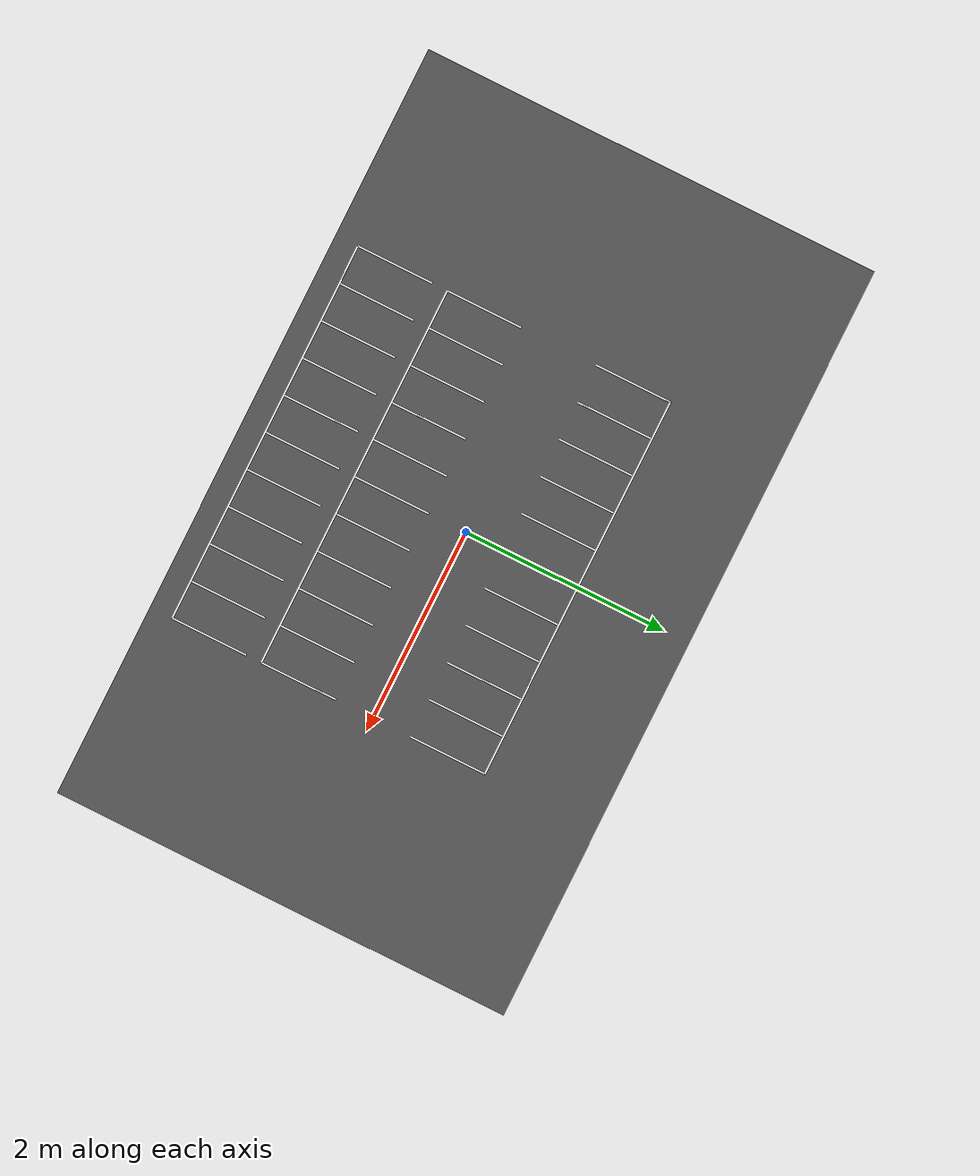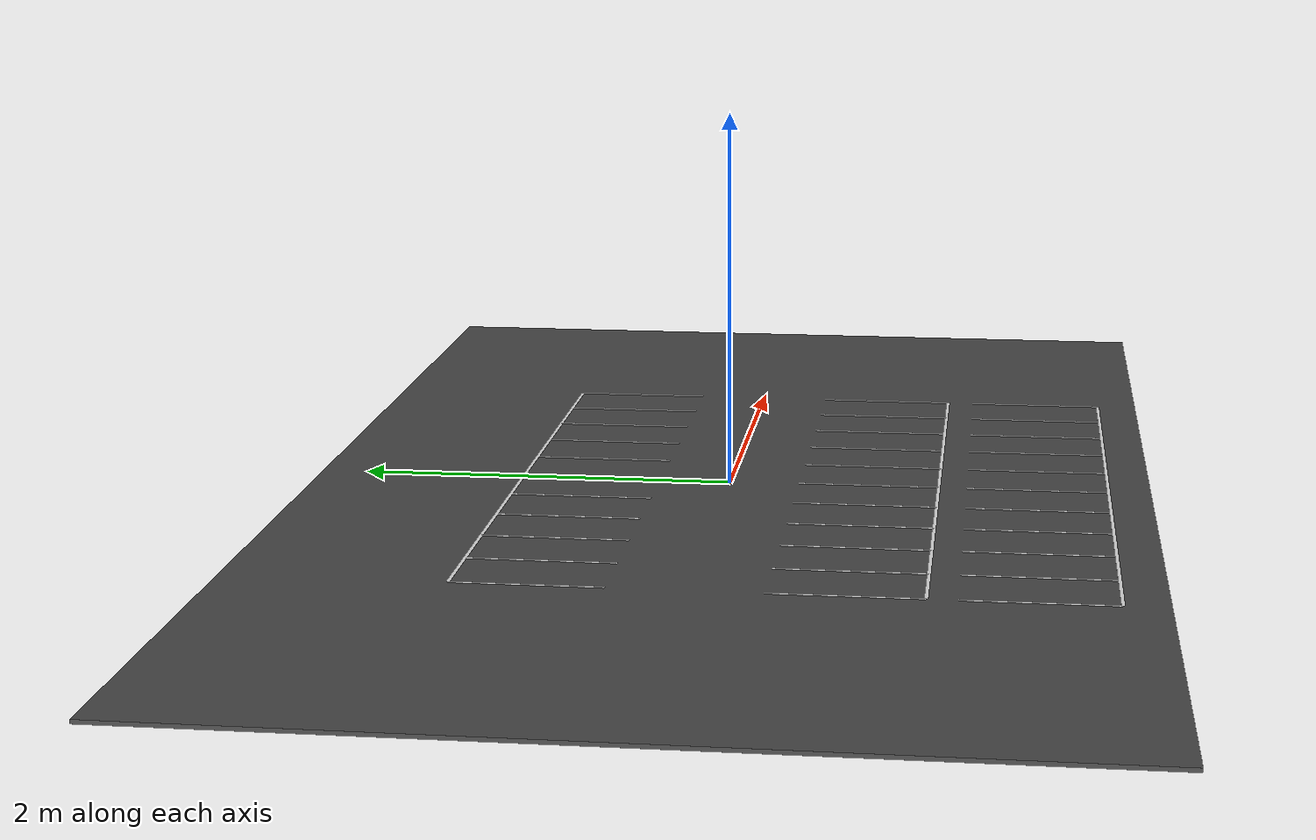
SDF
<sdf version="1.7">
 <world name="parking_lot_10th_scale">
  <include><uri>model://sun</uri></include>
  <physics name="default_physics" default="1" type="ode">
   <gravity>0 0 -9.8</gravity>
   <ode>
    <solver><type>quick</type><iters>50</iters><sor>1.3</sor></solver>
    <constraints>
     <cfm>0.0</cfm>
     <erp>0.2</erp>
     <contact_max_correcting_vel>100.0</contact_max_correcting_vel>
     <contact_surface_layer>0.001</contact_surface_layer>
    </constraints>
   </ode>
   <max_step_size>0.001</max_step_size>
   <real_time_factor>1.0</real_time_factor>
   <real_time_update_rate>1000.0</real_time_update_rate>
  </physics>
  <scene>
   <ambient>0.50 0.50 0.50 1.0</ambient>
   <background>0.08 0.08 0.08 1.0</background>
   <shadows>false</shadows>
  </scene>
  <model name="parking_lot">
   <static>true</static>
   <link name="parking_surface">
    <collision name="ground_collision">
     <pose>0 0 -0.01 0 0 0</pose>
     <scale>0.1 0.1 0.1</scale>
     <geometry><box><size>7.5 4.5 0.02</size></box></geometry>
     <surface>
      <contact>
       <collide_bitmask>0xffff</collide_bitmask>
       <ode><soft_erp>0.2</soft_erp><soft_cfm>0.0</soft_cfm><kp>1000000.0</kp><kd>1.0</kd></ode>
      </contact>
      <friction><ode><mu>100</mu><mu2>50</mu2></ode></friction>
     </surface>
    </collision>
    <visual name="ground_visual">
     <pose>0 0 -0.01 0 0 0</pose>
     <scale>0.1 0.1 0.1</scale>
     <geometry><box><size>7.5 4.5 0.02</size></box></geometry>
     <material>
      <script><uri>file://media/materials/scripts/gazebo.material</uri><name>Gazebo/DarkGrey</name></script>
     </material>
    </visual>
    <visual name="upper_row_back_line">
     <pose>0 1.125 0.01 0 0 0</pose>
     <scale>0.1 0.1 0.1</scale>
     <geometry><box><size>3.75 0.018 0.001</size></box></geometry>
     <material>
      <script><uri>file://media/materials/scripts/gazebo.material</uri><name>Gazebo/White</name></script>
     </material>
    </visual>
    <visual name="lower_inner_row_back_line">
     <pose>0 -1.125 0.01 0 0 0</pose>
     <scale>0.1 0.1 0.1</scale>
     <geometry><box><size>3.75 0.018 0.001</size></box></geometry>
     <material>
      <script><uri>file://media/materials/scripts/gazebo.material</uri><name>Gazebo/White</name></script>
     </material>
    </visual>
    <visual name="lower_outer_row_back_line">
     <pose>0 -2.025 0.01 0 0 0</pose>
     <scale>0.1 0.1 0.1</scale>
     <geometry><box><size>3.75 0.018 0.001</size></box></geometry>
     <material>
      <script><uri>file://media/materials/scripts/gazebo.material</uri><name>Gazebo/White</name></script>
     </material>
    </visual>
    <visual name="upper_row_divider_00">
     <pose>-1.875 0.75 0.01 0 0 0</pose>
     <scale>0.1 0.1 0.1</scale>
     <geometry><box><size>0.018 0.75 0.001</size></box></geometry>
     <material>
      <script><uri>file://media/materials/scripts/gazebo.material</uri><name>Gazebo/White</name></script>
     </material>
    </visual>
    <visual name="upper_row_divider_01">
     <pose>-1.50 0.75 0.01 0 0 0</pose>
     <scale>0.1 0.1 0.1</scale>
     <geometry><box><size>0.018 0.75 0.001</size></box></geometry>
     <material>
      <script><uri>file://media/materials/scripts/gazebo.material</uri><name>Gazebo/White</name></script>
     </material>
    </visual>
    <visual name="upper_row_divider_02">
     <pose>-1.125 0.75 0.01 0 0 0</pose>
     <scale>0.1 0.1 0.1</scale>
     <geometry><box><size>0.018 0.75 0.001</size></box></geometry>
     <material>
      <script><uri>file://media/materials/scripts/gazebo.material</uri><name>Gazebo/White</name></script>
     </material>
    </visual>
    <visual name="upper_row_divider_03">
     <pose>-0.75 0.75 0.01 0 0 0</pose>
     <scale>0.1 0.1 0.1</scale>
     <geometry><box><size>0.018 0.75 0.001</size></box></geometry>
     <material>
      <script><uri>file://media/materials/scripts/gazebo.material</uri><name>Gazebo/White</name></script>
     </material>
    </visual>
    <visual name="upper_row_divider_04">
     <pose>-0.375 0.75 0.01 0 0 0</pose>
     <scale>0.1 0.1 0.1</scale>
     <geometry><box><size>0.018 0.75 0.001</size></box></geometry>
     <material>
      <script><uri>file://media/materials/scripts/gazebo.material</uri><name>Gazebo/White</name></script>
     </material>
    </visual>
    <visual name="upper_row_divider_05">
     <pose>0 0.75 0.01 0 0 0</pose>
     <scale>0.1 0.1 0.1</scale>
     <geometry><box><size>0.018 0.75 0.001</size></box></geometry>
     <material>
      <script><uri>file://media/materials/scripts/gazebo.material</uri><name>Gazebo/White</name></script>
     </material>
    </visual>
    <visual name="upper_row_divider_06">
     <pose>0.375 0.75 0.01 0 0 0</pose>
     <scale>0.1 0.1 0.1</scale>
     <geometry><box><size>0.018 0.75 0.001</size></box></geometry>
     <material>
      <script><uri>file://media/materials/scripts/gazebo.material</uri><name>Gazebo/White</name></script>
     </material>
    </visual>
    <visual name="upper_row_divider_07">
     <pose>0.75 0.75 0.01 0 0 0</pose>
     <scale>0.1 0.1 0.1</scale>
     <geometry><box><size>0.018 0.75 0.001</size></box></geometry>
     <material>
      <script><uri>file://media/materials/scripts/gazebo.material</uri><name>Gazebo/White</name></script>
     </material>
    </visual>
    <visual name="upper_row_divider_08">
     <pose>1.125 0.75 0.01 0 0 0</pose>
     <scale>0.1 0.1 0.1</scale>
     <geometry><box><size>0.018 0.75 0.001</size></box></geometry>
     <material>
      <script><uri>file://media/materials/scripts/gazebo.material</uri><name>Gazebo/White</name></script>
     </material>
    </visual>
    <visual name="upper_row_divider_09">
     <pose>1.50 0.75 0.01 0 0 0</pose>
     <scale>0.1 0.1 0.1</scale>
     <geometry><box><size>0.018 0.75 0.001</size></box></geometry>
     <material>
      <script><uri>file://media/materials/scripts/gazebo.material</uri><name>Gazebo/White</name></script>
     </material>
    </visual>
    <visual name="upper_row_divider_10">
     <pose>1.875 0.75 0.01 0 0 0</pose>
     <scale>0.1 0.1 0.1</scale>
     <geometry><box><size>0.018 0.75 0.001</size></box></geometry>
     <material>
      <script><uri>file://media/materials/scripts/gazebo.material</uri><name>Gazebo/White</name></script>
     </material>
    </visual>
    <visual name="lower_inner_row_divider_00">
     <pose>-1.875 -0.75 0.01 0 0 0</pose>
     <scale>0.1 0.1 0.1</scale>
     <geometry><box><size>0.018 0.75 0.001</size></box></geometry>
     <material>
      <script><uri>file://media/materials/scripts/gazebo.material</uri><name>Gazebo/White</name></script>
     </material>
    </visual>
    <visual name="lower_inner_row_divider_01">
     <pose>-1.50 -0.75 0.01 0 0 0</pose>
     <scale>0.1 0.1 0.1</scale>
     <geometry><box><size>0.018 0.75 0.001</size></box></geometry>
     <material>
      <script><uri>file://media/materials/scripts/gazebo.material</uri><name>Gazebo/White</name></script>
     </material>
    </visual>
    <visual name="lower_inner_row_divider_02">
     <pose>-1.125 -0.75 0.01 0 0 0</pose>
     <scale>0.1 0.1 0.1</scale>
     <geometry><box><size>0.018 0.75 0.001</size></box></geometry>
     <material>
      <script><uri>file://media/materials/scripts/gazebo.material</uri><name>Gazebo/White</name></script>
     </material>
    </visual>
    <visual name="lower_inner_row_divider_03">
     <pose>-0.75 -0.75 0.01 0 0 0</pose>
     <scale>0.1 0.1 0.1</scale>
     <geometry><box><size>0.018 0.75 0.001</size></box></geometry>
     <material>
      <script><uri>file://media/materials/scripts/gazebo.material</uri><name>Gazebo/White</name></script>
     </material>
    </visual>
    <visual name="lower_inner_row_divider_04">
     <pose>-0.375 -0.75 0.01 0 0 0</pose>
     <scale>0.1 0.1 0.1</scale>
     <geometry><box><size>0.018 0.75 0.001</size></box></geometry>
     <material>
      <script><uri>file://media/materials/scripts/gazebo.material</uri><name>Gazebo/White</name></script>
     </material>
    </visual>
    <visual name="lower_inner_row_divider_05">
     <pose>0 -0.75 0.01 0 0 0</pose>
     <scale>0.1 0.1 0.1</scale>
     <geometry><box><size>0.018 0.75 0.001</size></box></geometry>
     <material>
      <script><uri>file://media/materials/scripts/gazebo.material</uri><name>Gazebo/White</name></script>
     </material>
    </visual>
    <visual name="lower_inner_row_divider_06">
     <pose>0.375 -0.75 0.01 0 0 0</pose>
     <scale>0.1 0.1 0.1</scale>
     <geometry><box><size>0.018 0.75 0.001</size></box></geometry>
     <material>
      <script><uri>file://media/materials/scripts/gazebo.material</uri><name>Gazebo/White</name></script>
     </material>
    </visual>
    <visual name="lower_inner_row_divider_07">
     <pose>0.75 -0.75 0.01 0 0 0</pose>
     <scale>0.1 0.1 0.1</scale>
     <geometry><box><size>0.018 0.75 0.001</size></box></geometry>
     <material>
      <script><uri>file://media/materials/scripts/gazebo.material</uri><name>Gazebo/White</name></script>
     </material>
    </visual>
    <visual name="lower_inner_row_divider_08">
     <pose>1.125 -0.75 0.01 0 0 0</pose>
     <scale>0.1 0.1 0.1</scale>
     <geometry><box><size>0.018 0.75 0.001</size></box></geometry>
     <material>
      <script><uri>file://media/materials/scripts/gazebo.material</uri><name>Gazebo/White</name></script>
     </material>
    </visual>
    <visual name="lower_inner_row_divider_09">
     <pose>1.50 -0.75 0.01 0 0 0</pose>
     <scale>0.1 0.1 0.1</scale>
     <geometry><box><size>0.018 0.75 0.001</size></box></geometry>
     <material>
      <script><uri>file://media/materials/scripts/gazebo.material</uri><name>Gazebo/White</name></script>
     </material>
    </visual>
    <visual name="lower_inner_row_divider_10">
     <pose>1.875 -0.75 0.01 0 0 0</pose>
     <scale>0.1 0.1 0.1</scale>
     <geometry><box><size>0.018 0.75 0.001</size></box></geometry>
     <material>
      <script><uri>file://media/materials/scripts/gazebo.material</uri><name>Gazebo/White</name></script>
     </material>
    </visual>
    <visual name="lower_outer_row_divider_00">
     <pose>-1.875 -1.65 0.01 0 0 0</pose>
     <scale>0.1 0.1 0.1</scale>
     <geometry><box><size>0.018 0.75 0.001</size></box></geometry>
     <material>
      <script><uri>file://media/materials/scripts/gazebo.material</uri><name>Gazebo/White</name></script>
     </material>
    </visual>
    <visual name="lower_outer_row_divider_01">
     <pose>-1.50 -1.65 0.01 0 0 0</pose>
     <scale>0.1 0.1 0.1</scale>
     <geometry><box><size>0.018 0.75 0.001</size></box></geometry>
     <material>
      <script><uri>file://media/materials/scripts/gazebo.material</uri><name>Gazebo/White</name></script>
     </material>
    </visual>
    <visual name="lower_outer_row_divider_02">
     <pose>-1.125 -1.65 0.01 0 0 0</pose>
     <scale>0.1 0.1 0.1</scale>
     <geometry><box><size>0.018 0.75 0.001</size></box></geometry>
     <material>
      <script><uri>file://media/materials/scripts/gazebo.material</uri><name>Gazebo/White</name></script>
     </material>
    </visual>
    <visual name="lower_outer_row_divider_03">
     <pose>-0.75 -1.65 0.01 0 0 0</pose>
     <scale>0.1 0.1 0.1</scale>
     <geometry><box><size>0.018 0.75 0.001</size></box></geometry>
     <material>
      <script><uri>file://media/materials/scripts/gazebo.material</uri><name>Gazebo/White</name></script>
     </material>
    </visual>
    <visual name="lower_outer_row_divider_04">
     <pose>-0.375 -1.65 0.01 0 0 0</pose>
     <scale>0.1 0.1 0.1</scale>
     <geometry><box><size>0.018 0.75 0.001</size></box></geometry>
     <material>
      <script><uri>file://media/materials/scripts/gazebo.material</uri><name>Gazebo/White</name></script>
     </material>
    </visual>
    <visual name="lower_outer_row_divider_05">
     <pose>0 -1.65 0.01 0 0 0</pose>
     <scale>0.1 0.1 0.1</scale>
     <geometry><box><size>0.018 0.75 0.001</size></box></geometry>
     <material>
      <script><uri>file://media/materials/scripts/gazebo.material</uri><name>Gazebo/White</name></script>
     </material>
    </visual>
    <visual name="lower_outer_row_divider_06">
     <pose>0.375 -1.65 0.01 0 0 0</pose>
     <scale>0.1 0.1 0.1</scale>
     <geometry><box><size>0.018 0.75 0.001</size></box></geometry>
     <material>
      <script><uri>file://media/materials/scripts/gazebo.material</uri><name>Gazebo/White</name></script>
     </material>
    </visual>
    <visual name="lower_outer_row_divider_07">
     <pose>0.75 -1.65 0.01 0 0 0</pose>
     <scale>0.1 0.1 0.1</scale>
     <geometry><box><size>0.018 0.75 0.001</size></box></geometry>
     <material>
      <script><uri>file://media/materials/scripts/gazebo.material</uri><name>Gazebo/White</name></script>
     </material>
    </visual>
    <visual name="lower_outer_row_divider_08">
     <pose>1.125 -1.65 0.01 0 0 0</pose>
     <scale>0.1 0.1 0.1</scale>
     <geometry><box><size>0.018 0.75 0.001</size></box></geometry>
     <material>
      <script><uri>file://media/materials/scripts/gazebo.material</uri><name>Gazebo/White</name></script>
     </material>
    </visual>
    <visual name="lower_outer_row_divider_09">
     <pose>1.50 -1.65 0.01 0 0 0</pose>
     <scale>0.1 0.1 0.1</scale>
     <geometry><box><size>0.018 0.75 0.001</size></box></geometry>
     <material>
      <script><uri>file://media/materials/scripts/gazebo.material</uri><name>Gazebo/White</name></script>
     </material>
    </visual>
    <visual name="lower_outer_row_divider_10">
     <pose>1.875 -1.65 0.01 0 0 0</pose>
     <scale>0.1 0.1 0.1</scale>
     <geometry><box><size>0.018 0.75 0.001</size></box></geometry>
     <material>
      <script><uri>file://media/materials/scripts/gazebo.material</uri><name>Gazebo/White</name></script>
     </material>
    </visual>
   </link>
  </model>
 </world>
</sdf>
